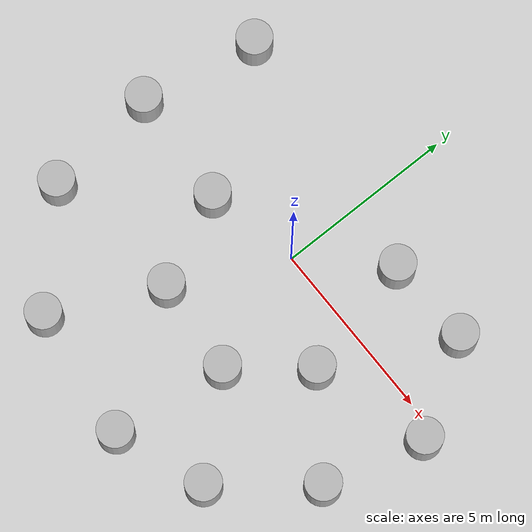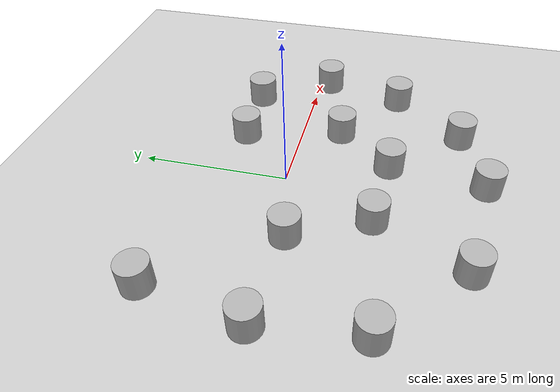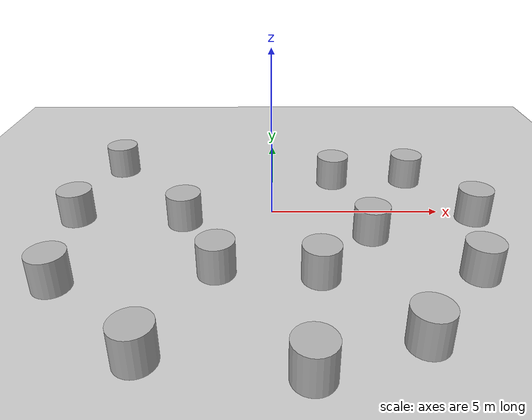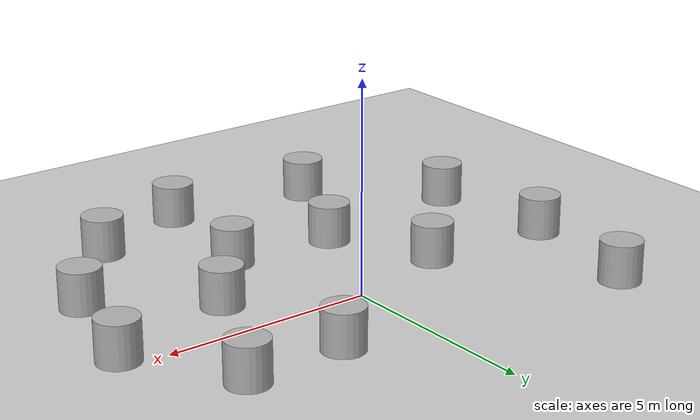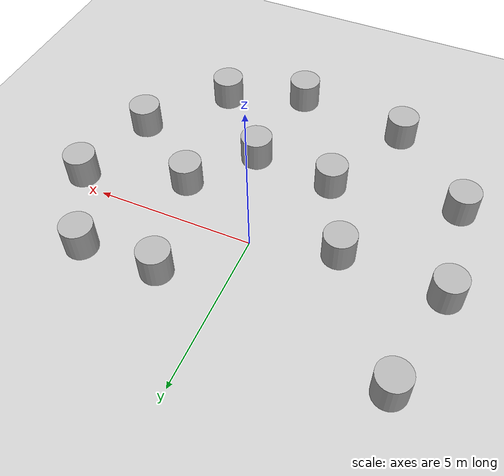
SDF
<sdf version='1.10'>
  <world name='empty'>
    <physics name='1ms' type='ignored'>
      <max_step_size>0.001</max_step_size>
      <real_time_factor>1</real_time_factor>
      <real_time_update_rate>1000</real_time_update_rate>
    </physics>
    <plugin name='gz::sim::systems::Physics' filename='gz-sim-physics-system'/>
    <plugin name='gz::sim::systems::UserCommands' filename='gz-sim-user-commands-system'/>
    <plugin name='gz::sim::systems::SceneBroadcaster' filename='gz-sim-scene-broadcaster-system'/>
    <plugin name='gz::sim::systems::Contact' filename='gz-sim-contact-system'/>
    <gravity>0 0 -9.8000000000000007</gravity>
    <magnetic_field>5.5644999999999998e-06 2.2875799999999999e-05 -4.2388400000000002e-05</magnetic_field>
    <atmosphere type='adiabatic'/>
    <scene>
      <ambient>0.400000006 0.400000006 0.400000006 1</ambient>
      <background>0.699999988 0.699999988 0.699999988 1</background>
      <shadows>true</shadows>
    </scene>
    <model name='ground_plane'>
      <static>true</static>
      <link name='link'>
        <collision name='collision'>
          <geometry>
            <plane>
              <normal>0 0 1</normal>
              <size>100 100</size>
            </plane>
          </geometry>
          <surface>
            <friction>
              <ode/>
            </friction>
            <bounce/>
            <contact/>
          </surface>
        </collision>
        <visual name='visual'>
          <geometry>
            <plane>
              <normal>0 0 1</normal>
              <size>100 100</size>
            </plane>
          </geometry>
          <material>
            <ambient>0.800000012 0.800000012 0.800000012 1</ambient>
            <diffuse>0.800000012 0.800000012 0.800000012 1</diffuse>
            <specular>0.800000012 0.800000012 0.800000012 1</specular>
          </material>
        </visual>
        <pose>0 0 0 0 0 0</pose>
        <inertial>
          <pose>0 0 0 0 0 0</pose>
          <mass>1</mass>
          <inertia>
            <ixx>1</ixx>
            <ixy>0</ixy>
            <ixz>0</ixz>
            <iyy>1</iyy>
            <iyz>0</iyz>
            <izz>1</izz>
          </inertia>
        </inertial>
        <enable_wind>false</enable_wind>
      </link>
      <pose>0 0 0 0 0 0</pose>
      <self_collide>false</self_collide>
    </model>
    <model name='cylinder'>
      <pose>4.4295500472708529 2.0392982523440732 0.49999942638036005 7.0436110769496234e-20 1.0182418344101958e-19 8.1283351512527311e-22</pose>
      <link name='cylinder_link'>
        <inertial>
          <inertia>
            <ixx>0.14580000000000001</ixx>
            <ixy>0</ixy>
            <ixz>0</ixz>
            <iyy>0.14580000000000001</iyy>
            <iyz>0</iyz>
            <izz>0.125</izz>
          </inertia>
          <mass>1</mass>
          <pose>0 0 0 0 0 0</pose>
        </inertial>
        <collision name='cylinder_collision'>
          <geometry>
            <cylinder>
              <radius>0.5</radius>
              <length>1</length>
            </cylinder>
          </geometry>
          <surface>
            <friction>
              <ode/>
            </friction>
            <bounce/>
            <contact/>
          </surface>
        </collision>
        <visual name='cylinder_visual'>
          <geometry>
            <cylinder>
              <radius>0.5</radius>
              <length>1</length>
            </cylinder>
          </geometry>
          <material>
            <ambient>0.300000012 0.300000012 0.300000012 1</ambient>
            <diffuse>0.699999988 0.699999988 0.699999988 1</diffuse>
            <specular>1 1 1 1</specular>
          </material>
        </visual>
        <pose>0 0 0 0 0 0</pose>
        <enable_wind>false</enable_wind>
      </link>
      <static>false</static>
      <self_collide>false</self_collide>
    </model>
    <model name='cylinder_0'>
      <pose>5.2461574104181246 -3.1973775210169828 0.49999942638036005 -6.050570643419673e-20 -9.4497097935659196e-20 4.167023344213114e-20</pose>
      <link name='cylinder_link'>
        <inertial>
          <inertia>
            <ixx>0.14580000000000001</ixx>
            <ixy>0</ixy>
            <ixz>0</ixz>
            <iyy>0.14580000000000001</iyy>
            <iyz>0</iyz>
            <izz>0.125</izz>
          </inertia>
          <mass>1</mass>
          <pose>0 0 0 0 0 0</pose>
        </inertial>
        <collision name='cylinder_collision'>
          <geometry>
            <cylinder>
              <radius>0.5</radius>
              <length>1</length>
            </cylinder>
          </geometry>
          <surface>
            <friction>
              <ode/>
            </friction>
            <bounce/>
            <contact/>
          </surface>
        </collision>
        <visual name='cylinder_visual'>
          <geometry>
            <cylinder>
              <radius>0.5</radius>
              <length>1</length>
            </cylinder>
          </geometry>
          <material>
            <ambient>0.300000012 0.300000012 0.300000012 1</ambient>
            <diffuse>0.699999988 0.699999988 0.699999988 1</diffuse>
            <specular>1 1 1 1</specular>
          </material>
        </visual>
        <pose>0 0 0 0 0 0</pose>
        <enable_wind>false</enable_wind>
      </link>
      <static>false</static>
      <self_collide>false</self_collide>
    </model>
    <model name='cylinder_1'>
      <pose>3.3286034323399223 -5.5970806389546253 0.49999942638036005 4.0139226118373374e-19 -1.4869590531715289e-19 -1.6876451389659199e-20</pose>
      <link name='cylinder_link'>
        <inertial>
          <inertia>
            <ixx>0.14580000000000001</ixx>
            <ixy>0</ixy>
            <ixz>0</ixz>
            <iyy>0.14580000000000001</iyy>
            <iyz>0</iyz>
            <izz>0.125</izz>
          </inertia>
          <mass>1</mass>
          <pose>0 0 0 0 0 0</pose>
        </inertial>
        <collision name='cylinder_collision'>
          <geometry>
            <cylinder>
              <radius>0.5</radius>
              <length>1</length>
            </cylinder>
          </geometry>
          <surface>
            <friction>
              <ode/>
            </friction>
            <bounce/>
            <contact/>
          </surface>
        </collision>
        <visual name='cylinder_visual'>
          <geometry>
            <cylinder>
              <radius>0.5</radius>
              <length>1</length>
            </cylinder>
          </geometry>
          <material>
            <ambient>0.300000012 0.300000012 0.300000012 1</ambient>
            <diffuse>0.699999988 0.699999988 0.699999988 1</diffuse>
            <specular>1 1 1 1</specular>
          </material>
        </visual>
        <pose>0 0 0 0 0 0</pose>
        <enable_wind>false</enable_wind>
      </link>
      <static>false</static>
      <self_collide>false</self_collide>
    </model>
    <model name='cylinder_2'>
      <pose>0.83597436012539927 -6.5080723418136373 0.49999942638036005 3.6831084376909333e-19 -1.1713658286192795e-19 -1.0135953958705272e-20</pose>
      <link name='cylinder_link'>
        <inertial>
          <inertia>
            <ixx>0.14580000000000001</ixx>
            <ixy>0</ixy>
            <ixz>0</ixz>
            <iyy>0.14580000000000001</iyy>
            <iyz>0</iyz>
            <izz>0.125</izz>
          </inertia>
          <mass>1</mass>
          <pose>0 0 0 0 0 0</pose>
        </inertial>
        <collision name='cylinder_collision'>
          <geometry>
            <cylinder>
              <radius>0.5</radius>
              <length>1</length>
            </cylinder>
          </geometry>
          <surface>
            <friction>
              <ode/>
            </friction>
            <bounce/>
            <contact/>
          </surface>
        </collision>
        <visual name='cylinder_visual'>
          <geometry>
            <cylinder>
              <radius>0.5</radius>
              <length>1</length>
            </cylinder>
          </geometry>
          <material>
            <ambient>0.300000012 0.300000012 0.300000012 1</ambient>
            <diffuse>0.699999988 0.699999988 0.699999988 1</diffuse>
            <specular>1 1 1 1</specular>
          </material>
        </visual>
        <pose>0 0 0 0 0 0</pose>
        <enable_wind>false</enable_wind>
      </link>
      <static>false</static>
      <self_collide>false</self_collide>
    </model>
    <model name='cylinder_3'>
      <pose>-2.7800934747528805 -6.0508032358912613 0.49999942638036005 2.2491259172732979e-19 1.9179308155406311e-19 4.0679878941087166e-21</pose>
      <link name='cylinder_link'>
        <inertial>
          <inertia>
            <ixx>0.14580000000000001</ixx>
            <ixy>0</ixy>
            <ixz>0</ixz>
            <iyy>0.14580000000000001</iyy>
            <iyz>0</iyz>
            <izz>0.125</izz>
          </inertia>
          <mass>1</mass>
          <pose>0 0 0 0 0 0</pose>
        </inertial>
        <collision name='cylinder_collision'>
          <geometry>
            <cylinder>
              <radius>0.5</radius>
              <length>1</length>
            </cylinder>
          </geometry>
          <surface>
            <friction>
              <ode/>
            </friction>
            <bounce/>
            <contact/>
          </surface>
        </collision>
        <visual name='cylinder_visual'>
          <geometry>
            <cylinder>
              <radius>0.5</radius>
              <length>1</length>
            </cylinder>
          </geometry>
          <material>
            <ambient>0.300000012 0.300000012 0.300000012 1</ambient>
            <diffuse>0.699999988 0.699999988 0.699999988 1</diffuse>
            <specular>1 1 1 1</specular>
          </material>
        </visual>
        <pose>0 0 0 0 0 0</pose>
        <enable_wind>false</enable_wind>
      </link>
      <static>false</static>
      <self_collide>false</self_collide>
    </model>
    <model name='cylinder_4'>
      <pose>-5.3702826564435631 -3.6017429456699981 0.49999942638036005 -3.7947641321388346e-19 -3.9806749635570042e-19 9.0315744807197292e-21</pose>
      <link name='cylinder_link'>
        <inertial>
          <inertia>
            <ixx>0.14580000000000001</ixx>
            <ixy>0</ixy>
            <ixz>0</ixz>
            <iyy>0.14580000000000001</iyy>
            <iyz>0</iyz>
            <izz>0.125</izz>
          </inertia>
          <mass>1</mass>
          <pose>0 0 0 0 0 0</pose>
        </inertial>
        <collision name='cylinder_collision'>
          <geometry>
            <cylinder>
              <radius>0.5</radius>
              <length>1</length>
            </cylinder>
          </geometry>
          <surface>
            <friction>
              <ode/>
            </friction>
            <bounce/>
            <contact/>
          </surface>
        </collision>
        <visual name='cylinder_visual'>
          <geometry>
            <cylinder>
              <radius>0.5</radius>
              <length>1</length>
            </cylinder>
          </geometry>
          <material>
            <ambient>0.300000012 0.300000012 0.300000012 1</ambient>
            <diffuse>0.699999988 0.699999988 0.699999988 1</diffuse>
            <specular>1 1 1 1</specular>
          </material>
        </visual>
        <pose>0 0 0 0 0 0</pose>
        <enable_wind>false</enable_wind>
      </link>
      <static>false</static>
      <self_collide>false</self_collide>
    </model>
    <model name='cylinder_5'>
      <pose>5.9438845502275539 -0.40062745157859236 0.49999942638036005 -3.0659235797799081e-19 2.8115169301950393e-19 1.2019557895333858e-20</pose>
      <link name='cylinder_link'>
        <inertial>
          <inertia>
            <ixx>0.14580000000000001</ixx>
            <ixy>0</ixy>
            <ixz>0</ixz>
            <iyy>0.14580000000000001</iyy>
            <iyz>0</iyz>
            <izz>0.125</izz>
          </inertia>
          <mass>1</mass>
          <pose>0 0 0 0 0 0</pose>
        </inertial>
        <collision name='cylinder_collision'>
          <geometry>
            <cylinder>
              <radius>0.5</radius>
              <length>1</length>
            </cylinder>
          </geometry>
          <surface>
            <friction>
              <ode/>
            </friction>
            <bounce/>
            <contact/>
          </surface>
        </collision>
        <visual name='cylinder_visual'>
          <geometry>
            <cylinder>
              <radius>0.5</radius>
              <length>1</length>
            </cylinder>
          </geometry>
          <material>
            <ambient>0.300000012 0.300000012 0.300000012 1</ambient>
            <diffuse>0.699999988 0.699999988 0.699999988 1</diffuse>
            <specular>1 1 1 1</specular>
          </material>
        </visual>
        <pose>0 0 0 0 0 0</pose>
        <enable_wind>false</enable_wind>
      </link>
      <static>false</static>
      <self_collide>false</self_collide>
    </model>
    <model name='cylinder_6'>
      <pose>-5.739634042856796 -0.39794520792126398 0.49999942638036005 1.0208673588447208e-19 -4.855222375439518e-20 6.4138102727346188e-21</pose>
      <link name='cylinder_link'>
        <inertial>
          <inertia>
            <ixx>0.14580000000000001</ixx>
            <ixy>0</ixy>
            <ixz>0</ixz>
            <iyy>0.14580000000000001</iyy>
            <iyz>0</iyz>
            <izz>0.125</izz>
          </inertia>
          <mass>1</mass>
          <pose>0 0 0 0 0 0</pose>
        </inertial>
        <collision name='cylinder_collision'>
          <geometry>
            <cylinder>
              <radius>0.5</radius>
              <length>1</length>
            </cylinder>
          </geometry>
          <surface>
            <friction>
              <ode/>
            </friction>
            <bounce/>
            <contact/>
          </surface>
        </collision>
        <visual name='cylinder_visual'>
          <geometry>
            <cylinder>
              <radius>0.5</radius>
              <length>1</length>
            </cylinder>
          </geometry>
          <material>
            <ambient>0.300000012 0.300000012 0.300000012 1</ambient>
            <diffuse>0.699999988 0.699999988 0.699999988 1</diffuse>
            <specular>1 1 1 1</specular>
          </material>
        </visual>
        <pose>0 0 0 0 0 0</pose>
        <enable_wind>false</enable_wind>
      </link>
      <static>false</static>
      <self_collide>false</self_collide>
    </model>
    <model name='cylinder_7'>
      <pose>-5.1482322198665917 2.8865426969006269 0.49999942638036005 3.4023888538605078e-19 3.6647829246512576e-19 5.1780325334264722e-21</pose>
      <link name='cylinder_link'>
        <inertial>
          <inertia>
            <ixx>0.14580000000000001</ixx>
            <ixy>0</ixy>
            <ixz>0</ixz>
            <iyy>0.14580000000000001</iyy>
            <iyz>0</iyz>
            <izz>0.125</izz>
          </inertia>
          <mass>1</mass>
          <pose>0 0 0 0 0 0</pose>
        </inertial>
        <collision name='cylinder_collision'>
          <geometry>
            <cylinder>
              <radius>0.5</radius>
              <length>1</length>
            </cylinder>
          </geometry>
          <surface>
            <friction>
              <ode/>
            </friction>
            <bounce/>
            <contact/>
          </surface>
        </collision>
        <visual name='cylinder_visual'>
          <geometry>
            <cylinder>
              <radius>0.5</radius>
              <length>1</length>
            </cylinder>
          </geometry>
          <material>
            <ambient>0.300000012 0.300000012 0.300000012 1</ambient>
            <diffuse>0.699999988 0.699999988 0.699999988 1</diffuse>
            <specular>1 1 1 1</specular>
          </material>
        </visual>
        <pose>0 0 0 0 0 0</pose>
        <enable_wind>false</enable_wind>
      </link>
      <static>false</static>
      <self_collide>false</self_collide>
    </model>
    <model name='cylinder_8'>
      <pose>1.9902724958169307 1.951825042372263 0.49999942638036005 8.2818446873871174e-20 2.274919157127338e-19 -1.3495762766404069e-20</pose>
      <link name='cylinder_link'>
        <inertial>
          <inertia>
            <ixx>0.14580000000000001</ixx>
            <ixy>0</ixy>
            <ixz>0</ixz>
            <iyy>0.14580000000000001</iyy>
            <iyz>0</iyz>
            <izz>0.125</izz>
          </inertia>
          <mass>1</mass>
          <pose>0 0 0 0 0 0</pose>
        </inertial>
        <collision name='cylinder_collision'>
          <geometry>
            <cylinder>
              <radius>0.5</radius>
              <length>1</length>
            </cylinder>
          </geometry>
          <surface>
            <friction>
              <ode/>
            </friction>
            <bounce/>
            <contact/>
          </surface>
        </collision>
        <visual name='cylinder_visual'>
          <geometry>
            <cylinder>
              <radius>0.5</radius>
              <length>1</length>
            </cylinder>
          </geometry>
          <material>
            <ambient>0.300000012 0.300000012 0.300000012 1</ambient>
            <diffuse>0.699999988 0.699999988 0.699999988 1</diffuse>
            <specular>1 1 1 1</specular>
          </material>
        </visual>
        <pose>0 0 0 0 0 0</pose>
        <enable_wind>false</enable_wind>
      </link>
      <static>false</static>
      <self_collide>false</self_collide>
    </model>
    <model name='cylinder_9'>
      <pose>2.7706762533542801 -1.39282132761458 0.49999942638036005 3.8518128359788638e-19 -3.8492824967944764e-19 -9.6100619473114135e-21</pose>
      <link name='cylinder_link'>
        <inertial>
          <inertia>
            <ixx>0.14580000000000001</ixx>
            <ixy>0</ixy>
            <ixz>0</ixz>
            <iyy>0.14580000000000001</iyy>
            <iyz>0</iyz>
            <izz>0.125</izz>
          </inertia>
          <mass>1</mass>
          <pose>0 0 0 0 0 0</pose>
        </inertial>
        <collision name='cylinder_collision'>
          <geometry>
            <cylinder>
              <radius>0.5</radius>
              <length>1</length>
            </cylinder>
          </geometry>
          <surface>
            <friction>
              <ode/>
            </friction>
            <bounce/>
            <contact/>
          </surface>
        </collision>
        <visual name='cylinder_visual'>
          <geometry>
            <cylinder>
              <radius>0.5</radius>
              <length>1</length>
            </cylinder>
          </geometry>
          <material>
            <ambient>0.300000012 0.300000012 0.300000012 1</ambient>
            <diffuse>0.699999988 0.699999988 0.699999988 1</diffuse>
            <specular>1 1 1 1</specular>
          </material>
        </visual>
        <pose>0 0 0 0 0 0</pose>
        <enable_wind>false</enable_wind>
      </link>
      <static>false</static>
      <self_collide>false</self_collide>
    </model>
    <model name='cylinder_10'>
      <pose>1.2299376802391957 -3.29345761887754 0.49999942638036005 3.47942638437714e-19 3.3266508582106777e-19 -3.3314417002307012e-21</pose>
      <link name='cylinder_link'>
        <inertial>
          <inertia>
            <ixx>0.14580000000000001</ixx>
            <ixy>0</ixy>
            <ixz>0</ixz>
            <iyy>0.14580000000000001</iyy>
            <iyz>0</iyz>
            <izz>0.125</izz>
          </inertia>
          <mass>1</mass>
          <pose>0 0 0 0 0 0</pose>
        </inertial>
        <collision name='cylinder_collision'>
          <geometry>
            <cylinder>
              <radius>0.5</radius>
              <length>1</length>
            </cylinder>
          </geometry>
          <surface>
            <friction>
              <ode/>
            </friction>
            <bounce/>
            <contact/>
          </surface>
        </collision>
        <visual name='cylinder_visual'>
          <geometry>
            <cylinder>
              <radius>0.5</radius>
              <length>1</length>
            </cylinder>
          </geometry>
          <material>
            <ambient>0.300000012 0.300000012 0.300000012 1</ambient>
            <diffuse>0.699999988 0.699999988 0.699999988 1</diffuse>
            <specular>1 1 1 1</specular>
          </material>
        </visual>
        <pose>0 0 0 0 0 0</pose>
        <enable_wind>false</enable_wind>
      </link>
      <static>false</static>
      <self_collide>false</self_collide>
    </model>
    <model name='cylinder_11'>
      <pose>-1.3949624722228726 -3.0713378029443805 0.49999942638036005 1.1951701753976669e-19 1.689679290884131e-19 2.518426665728039e-20</pose>
      <link name='cylinder_link'>
        <inertial>
          <inertia>
            <ixx>0.14580000000000001</ixx>
            <ixy>0</ixy>
            <ixz>0</ixz>
            <iyy>0.14580000000000001</iyy>
            <iyz>0</iyz>
            <izz>0.125</izz>
          </inertia>
          <mass>1</mass>
          <pose>0 0 0 0 0 0</pose>
        </inertial>
        <collision name='cylinder_collision'>
          <geometry>
            <cylinder>
              <radius>0.5</radius>
              <length>1</length>
            </cylinder>
          </geometry>
          <surface>
            <friction>
              <ode/>
            </friction>
            <bounce/>
            <contact/>
          </surface>
        </collision>
        <visual name='cylinder_visual'>
          <geometry>
            <cylinder>
              <radius>0.5</radius>
              <length>1</length>
            </cylinder>
          </geometry>
          <material>
            <ambient>0.300000012 0.300000012 0.300000012 1</ambient>
            <diffuse>0.699999988 0.699999988 0.699999988 1</diffuse>
            <specular>1 1 1 1</specular>
          </material>
        </visual>
        <pose>0 0 0 0 0 0</pose>
        <enable_wind>false</enable_wind>
      </link>
      <static>false</static>
      <self_collide>false</self_collide>
    </model>
    <model name='cylinder_12'>
      <pose>-2.5428457442053203 -0.61581452971829531 0.49999942638036005 2.5970427201159003e-19 -2.4444009996679431e-20 1.2989151001234073e-20</pose>
      <link name='cylinder_link'>
        <inertial>
          <inertia>
            <ixx>0.14580000000000001</ixx>
            <ixy>0</ixy>
            <ixz>0</ixz>
            <iyy>0.14580000000000001</iyy>
            <iyz>0</iyz>
            <izz>0.125</izz>
          </inertia>
          <mass>1</mass>
          <pose>0 0 0 0 0 0</pose>
        </inertial>
        <collision name='cylinder_collision'>
          <geometry>
            <cylinder>
              <radius>0.5</radius>
              <length>1</length>
            </cylinder>
          </geometry>
          <surface>
            <friction>
              <ode/>
            </friction>
            <bounce/>
            <contact/>
          </surface>
        </collision>
        <visual name='cylinder_visual'>
          <geometry>
            <cylinder>
              <radius>0.5</radius>
              <length>1</length>
            </cylinder>
          </geometry>
          <material>
            <ambient>0.300000012 0.300000012 0.300000012 1</ambient>
            <diffuse>0.699999988 0.699999988 0.699999988 1</diffuse>
            <specular>1 1 1 1</specular>
          </material>
        </visual>
        <pose>0 0 0 0 0 0</pose>
        <enable_wind>false</enable_wind>
      </link>
      <static>false</static>
      <self_collide>false</self_collide>
    </model>
    <light name='sun' type='directional'>
      <pose>0 0 10 0 0 0</pose>
      <cast_shadows>true</cast_shadows>
      <intensity>1</intensity>
      <direction>-0.5 0.10000000000000001 -0.90000000000000002</direction>
      <diffuse>0.800000012 0.800000012 0.800000012 1</diffuse>
      <specular>0.200000003 0.200000003 0.200000003 1</specular>
      <attenuation>
        <range>1000</range>
        <linear>0.01</linear>
        <constant>0.90000000000000002</constant>
        <quadratic>0.001</quadratic>
      </attenuation>
      <spot>
        <inner_angle>0</inner_angle>
        <outer_angle>0</outer_angle>
        <falloff>0</falloff>
      </spot>
    </light>
  </world>
</sdf>
